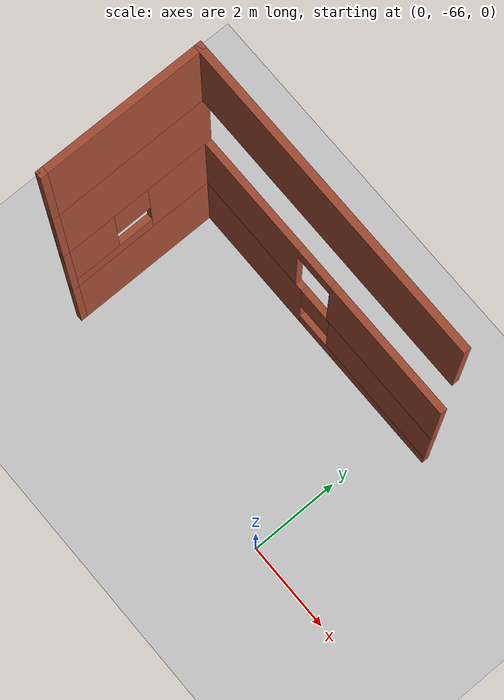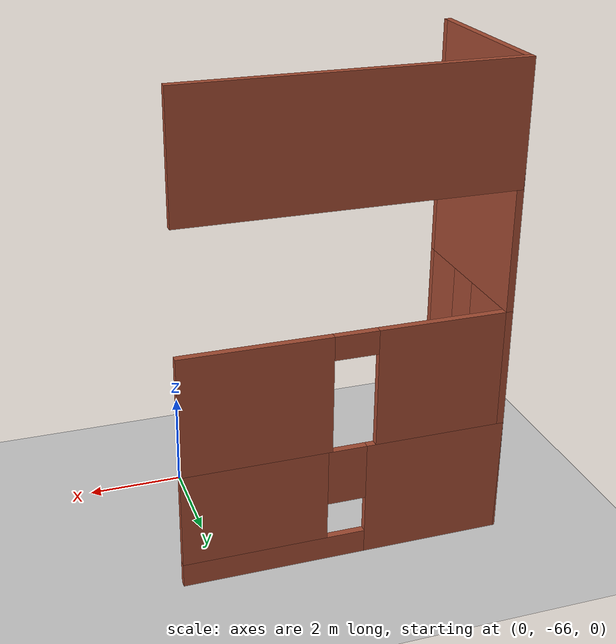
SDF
<sdf version="1.7">
 <world name="default">
  <model name="ground_plane">
   <static>1</static>
   <link name="link">
    <collision name="collision">
     <geometry><plane><normal>0 0 1</normal><size>300 300</size></plane></geometry>
     <surface>
      <contact><collide_bitmask>65535</collide_bitmask></contact>
      <friction><ode><mu>100</mu><mu2>50</mu2></ode></friction>
     </surface>
    </collision>
    <visual name="visual">
     <cast_shadows>0</cast_shadows>
     <geometry><plane><normal>0 0 1</normal><size>300 300</size></plane></geometry>
     <material>
      <script><uri>file://media/materials/scripts/gazebo.material</uri><name>Gazebo/Grey</name></script>
     </material>
    </visual>
   </link>
  </model>
  <model name="Drone_House_2">
   <pose>1.8622 -57.4379 0 0 -0 0</pose>
   <link name="Wall_102">
    <collision name="Wall_102_Collision">
     <geometry><box><size>3.5 0.15 2.5</size></box></geometry>
     <pose>0 0 1.25 0 -0 0</pose>
    </collision>
    <visual name="Wall_102_Visual">
     <pose>0 0 1.25 0 -0 0</pose>
     <geometry><box><size>3.5 0.15 2.5</size></box></geometry>
     <material>
      <script><uri>file://media/materials/scripts/gazebo.material</uri><name>Gazebo/Bricks</name></script>
      <ambient>1 1 1 1</ambient>
     </material>
     <meta><layer>2</layer></meta>
    </visual>
    <pose>-7.72394 -6.525 5 0 -0 -1.5708</pose>
   </link>
   <link name="Wall_103">
    <collision name="Wall_103_Collision">
     <geometry><box><size>0.15 0.15 2.5</size></box></geometry>
     <pose>0 0 1.25 0 -0 0</pose>
    </collision>
    <visual name="Wall_103_Visual">
     <pose>0 0 1.25 0 -0 0</pose>
     <geometry><box><size>0.15 0.15 2.5</size></box></geometry>
     <material>
      <script><uri>file://media/materials/scripts/gazebo.material</uri><name>Gazebo/Bricks</name></script>
      <ambient>1 1 1 1</ambient>
     </material>
     <meta><layer>2</layer></meta>
    </visual>
    <pose>-7.72394 -8.2 5 0 -0 0</pose>
   </link>
   <link name="Wall_107">
    <collision name="Wall_107_Collision">
     <geometry><box><size>6.75 0.15 2.5</size></box></geometry>
     <pose>0 0 1.25 0 -0 0</pose>
    </collision>
    <visual name="Wall_107_Visual">
     <pose>0 0 1.25 0 -0 0</pose>
     <geometry><box><size>6.75 0.15 2.5</size></box></geometry>
     <material>
      <script><uri>file://media/materials/scripts/gazebo.material</uri><name>Gazebo/Bricks</name></script>
      <ambient>1 1 1 1</ambient>
     </material>
     <meta><layer>3</layer></meta>
    </visual>
    <pose>-4.42394 -4.85 7.5 0 -0 0</pose>
   </link>
   <link name="Wall_124">
    <collision name="Wall_124_Collision">
     <geometry><box><size>3.5 0.15 2.5</size></box></geometry>
     <pose>0 0 1.25 0 -0 0</pose>
    </collision>
    <visual name="Wall_124_Visual">
     <pose>0 0 1.25 0 -0 0</pose>
     <geometry><box><size>3.5 0.15 2.5</size></box></geometry>
     <material>
      <script><uri>file://media/materials/scripts/gazebo.material</uri><name>Gazebo/Bricks</name></script>
      <ambient>1 1 1 1</ambient>
     </material>
     <meta><layer>3</layer></meta>
    </visual>
    <pose>-7.72394 -6.525 7.5 0 -0 -1.5708</pose>
   </link>
   <link name="Wall_125">
    <collision name="Wall_125_Collision">
     <geometry><box><size>0.15 0.15 2.5</size></box></geometry>
     <pose>0 0 1.25 0 -0 0</pose>
    </collision>
    <visual name="Wall_125_Visual">
     <pose>0 0 1.25 0 -0 0</pose>
     <geometry><box><size>0.15 0.15 2.5</size></box></geometry>
     <material>
      <script><uri>file://media/materials/scripts/gazebo.material</uri><name>Gazebo/Bricks</name></script>
      <ambient>1 1 1 1</ambient>
     </material>
     <meta><layer>3</layer></meta>
    </visual>
    <pose>-7.72394 -8.2 7.5 0 -0 0</pose>
   </link>
   <link name="Wall_28">
    <collision name="Wall_28_Collision">
     <geometry><box><size>3.5 0.15 2.5</size></box></geometry>
     <pose>0 0 1.25 0 -0 0</pose>
    </collision>
    <visual name="Wall_28_Visual">
     <pose>0 0 1.25 0 -0 0</pose>
     <geometry><box><size>3.5 0.15 2.5</size></box></geometry>
     <material>
      <script><uri>file://media/materials/scripts/gazebo.material</uri><name>Gazebo/Bricks</name></script>
      <ambient>1 1 1 1</ambient>
     </material>
     <meta><layer>0</layer></meta>
    </visual>
    <pose>-7.72394 -6.525 0 0 -0 -1.5708</pose>
   </link>
   <link name="Wall_29">
    <collision name="Wall_29_Collision">
     <geometry><box><size>0.15 0.15 2.5</size></box></geometry>
     <pose>0 0 1.25 0 -0 0</pose>
    </collision>
    <visual name="Wall_29_Visual">
     <pose>0 0 1.25 0 -0 0</pose>
     <geometry><box><size>0.15 0.15 2.5</size></box></geometry>
     <material>
      <script><uri>file://media/materials/scripts/gazebo.material</uri><name>Gazebo/Bricks</name></script>
      <ambient>1 1 1 1</ambient>
     </material>
     <meta><layer>0</layer></meta>
    </visual>
    <pose>-7.72394 -8.2 0 0 -0 0</pose>
   </link>
   <link name="Wall_36">
    <pose>-4.42394 -4.85 2.5 0 -0 0</pose>
    <visual name="Wall_36_Visual_0">
     <pose>-1.98145 0 1.25 0 -0 0</pose>
     <geometry><box><size>2.7871 0.15 2.5</size></box></geometry>
     <material>
      <script><uri>file://media/materials/scripts/gazebo.material</uri><name>Gazebo/Bricks</name></script>
      <ambient>1 1 1 1</ambient>
     </material>
     <meta><layer>1</layer></meta>
    </visual>
    <collision name="Wall_36_Collision_0">
     <geometry><box><size>2.7871 0.15 2.5</size></box></geometry>
     <pose>-1.98145 0 1.25 0 -0 0</pose>
    </collision>
    <visual name="Wall_36_Visual_1">
     <pose>1.84355 0 1.25 0 -0 0</pose>
     <geometry><box><size>3.0629 0.15 2.5</size></box></geometry>
     <material>
      <script><uri>file://media/materials/scripts/gazebo.material</uri><name>Gazebo/Bricks</name></script>
      <ambient>1 1 1 1</ambient>
     </material>
     <meta><layer>1</layer></meta>
    </visual>
    <collision name="Wall_36_Collision_1">
     <geometry><box><size>3.0629 0.15 2.5</size></box></geometry>
     <pose>1.84355 0 1.25 0 -0 0</pose>
    </collision>
    <visual name="Wall_36_Visual_2">
     <pose>-0.1379 0 2.25 0 -0 0</pose>
     <geometry><box><size>0.9 0.15 0.5</size></box></geometry>
     <material>
      <script><uri>file://media/materials/scripts/gazebo.material</uri><name>Gazebo/Bricks</name></script>
      <ambient>1 1 1 1</ambient>
     </material>
     <meta><layer>1</layer></meta>
    </visual>
    <collision name="Wall_36_Collision_2">
     <geometry><box><size>0.9 0.15 0.5</size></box></geometry>
     <pose>-0.1379 0 2.25 0 -0 0</pose>
    </collision>
   </link>
   <link name="Wall_5">
    <pose>-4.42394 -4.85 0 0 -0 0</pose>
    <visual name="Wall_5_Visual_0">
     <pose>-1.88995 0 1.25 0 -0 0</pose>
     <geometry><box><size>2.9701 0.15 2.5</size></box></geometry>
     <material>
      <script><uri>file://media/materials/scripts/gazebo.material</uri><name>Gazebo/Bricks</name></script>
      <ambient>1 1 1 1</ambient>
     </material>
     <meta><layer>0</layer></meta>
    </visual>
    <collision name="Wall_5_Collision_0">
     <geometry><box><size>2.9701 0.15 2.5</size></box></geometry>
     <pose>-1.88995 0 1.25 0 -0 0</pose>
    </collision>
    <visual name="Wall_5_Visual_1">
     <pose>1.48505 0 0.25 0 -0 0</pose>
     <geometry><box><size>3.7799 0.15 0.5</size></box></geometry>
     <material>
      <script><uri>file://media/materials/scripts/gazebo.material</uri><name>Gazebo/Bricks</name></script>
      <ambient>1 1 1 1</ambient>
     </material>
     <meta><layer>0</layer></meta>
    </visual>
    <collision name="Wall_5_Collision_1">
     <geometry><box><size>3.7799 0.15 0.5</size></box></geometry>
     <pose>1.48505 0 0.25 0 -0 0</pose>
    </collision>
    <visual name="Wall_5_Visual_2">
     <pose>1.88505 0 1.5 0 -0 0</pose>
     <geometry><box><size>2.9799 0.15 2</size></box></geometry>
     <material>
      <script><uri>file://media/materials/scripts/gazebo.material</uri><name>Gazebo/Bricks</name></script>
      <ambient>1 1 1 1</ambient>
     </material>
     <meta><layer>0</layer></meta>
    </visual>
    <collision name="Wall_5_Collision_2">
     <geometry><box><size>2.9799 0.15 2</size></box></geometry>
     <pose>1.88505 0 1.5 0 -0 0</pose>
    </collision>
    <visual name="Wall_5_Visual_3">
     <pose>-0.004899 0 1.9 0 -0 0</pose>
     <geometry><box><size>0.8 0.15 1.2</size></box></geometry>
     <material>
      <script><uri>file://media/materials/scripts/gazebo.material</uri><name>Gazebo/Bricks</name></script>
      <ambient>1 1 1 1</ambient>
     </material>
     <meta><layer>0</layer></meta>
    </visual>
    <collision name="Wall_5_Collision_3">
     <geometry><box><size>0.8 0.15 1.2</size></box></geometry>
     <pose>-0.004899 0 1.9 0 -0 0</pose>
    </collision>
   </link>
   <link name="Wall_53">
    <pose>-7.72394 -6.525 2.5 0 -0 -1.5708</pose>
    <visual name="Wall_53_Visual_0">
     <pose>-0.996881 0 1.25 0 -0 0</pose>
     <geometry><box><size>1.50624 0.15 2.5</size></box></geometry>
     <material>
      <script><uri>file://media/materials/scripts/gazebo.material</uri><name>Gazebo/Bricks</name></script>
      <ambient>1 1 1 1</ambient>
     </material>
     <meta><layer>1</layer></meta>
    </visual>
    <collision name="Wall_53_Collision_0">
     <geometry><box><size>1.50624 0.15 2.5</size></box></geometry>
     <pose>-0.996881 0 1.25 0 -0 0</pose>
    </collision>
    <visual name="Wall_53_Visual_1">
     <pose>0.753119 0 0.25 0 -0 0</pose>
     <geometry><box><size>1.99376 0.15 0.5</size></box></geometry>
     <material>
      <script><uri>file://media/materials/scripts/gazebo.material</uri><name>Gazebo/Bricks</name></script>
      <ambient>1 1 1 1</ambient>
     </material>
     <meta><layer>1</layer></meta>
    </visual>
    <collision name="Wall_53_Collision_1">
     <geometry><box><size>1.99376 0.15 0.5</size></box></geometry>
     <pose>0.753119 0 0.25 0 -0 0</pose>
    </collision>
    <visual name="Wall_53_Visual_2">
     <pose>1.15312 0 1.5 0 -0 0</pose>
     <geometry><box><size>1.19376 0.15 2</size></box></geometry>
     <material>
      <script><uri>file://media/materials/scripts/gazebo.material</uri><name>Gazebo/Bricks</name></script>
      <ambient>1 1 1 1</ambient>
     </material>
     <meta><layer>1</layer></meta>
    </visual>
    <collision name="Wall_53_Collision_2">
     <geometry><box><size>1.19376 0.15 2</size></box></geometry>
     <pose>1.15312 0 1.5 0 -0 0</pose>
    </collision>
    <visual name="Wall_53_Visual_3">
     <pose>0.156238 0 1.9 0 -0 0</pose>
     <geometry><box><size>0.8 0.15 1.2</size></box></geometry>
     <material>
      <script><uri>file://media/materials/scripts/gazebo.material</uri><name>Gazebo/Bricks</name></script>
      <ambient>1 1 1 1</ambient>
     </material>
     <meta><layer>1</layer></meta>
    </visual>
    <collision name="Wall_53_Collision_3">
     <geometry><box><size>0.8 0.15 1.2</size></box></geometry>
     <pose>0.156238 0 1.9 0 -0 0</pose>
    </collision>
   </link>
   <link name="Wall_54">
    <collision name="Wall_54_Collision">
     <geometry><box><size>0.15 0.15 2.5</size></box></geometry>
     <pose>0 0 1.25 0 -0 0</pose>
    </collision>
    <visual name="Wall_54_Visual">
     <pose>0 0 1.25 0 -0 0</pose>
     <geometry><box><size>0.15 0.15 2.5</size></box></geometry>
     <material>
      <script><uri>file://media/materials/scripts/gazebo.material</uri><name>Gazebo/Bricks</name></script>
      <ambient>1 1 1 1</ambient>
     </material>
     <meta><layer>1</layer></meta>
    </visual>
    <pose>-7.72394 -8.2 2.5 0 -0 0</pose>
   </link>
   <static>1</static>
  </model>
 </world>
</sdf>
